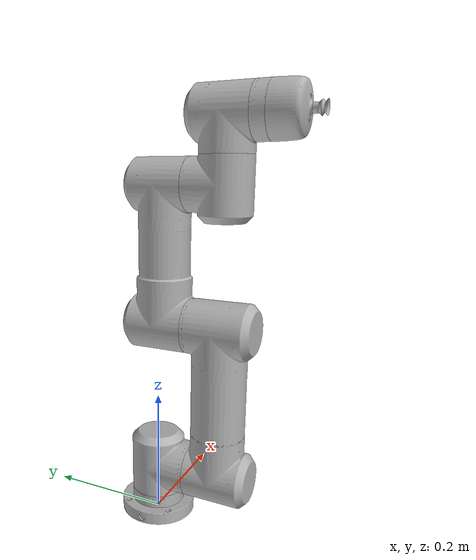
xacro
<?xml version='1.0' encoding='utf-8'?>
<robot xmlns:xacro="http://ros.org/wiki/xacro" name="utra6_550">

  <xacro:arg name="prefix" default=""/>
  <xacro:arg name="ros_namespace" default="utra6_550"/>
  <xacro:arg name="limited" default="false"/>
  <xacro:arg name="effort_control" default="false"/>
  <xacro:arg name="attach_to_world" default="true"/>

    <!-- utra6_550 -->
    <xacro:include filename="$(find arm_description)/urdf/utra6_550.urdf.xacro" />

    <xacro:if value="$(arg attach_to_world)">
      <link name="world" />
    </xacro:if>

    <joint name="$(arg prefix)world_joint" type="fixed">
      <parent link="world" />
      <child link = "$(arg prefix)base_link" />
      <origin xyz="0 0 0" rpy="0 0 0" />
    </joint>

    <xacro:if value="$(arg limited)">
      <xacro:utra6_550_urdf prefix="$(arg prefix)"
        joint1_lower_limit="${-2.0*pi+0.02}" joint1_upper_limit="${2.0*pi-0.02}"
        joint2_lower_limit="${-2.0*pi+0.02}" joint2_upper_limit="${2.0*pi-0.02}"
        joint3_lower_limit="${-2.7299+0.02}" joint3_upper_limit="${2.7299-0.02}"
        joint4_lower_limit="${-2.0*pi+0.02}" joint4_upper_limit="${2.0*pi-0.02}"
        joint5_lower_limit="${-2.0*pi+0.02}" joint5_upper_limit="${2.0*pi-0.02}"
        joint6_lower_limit="${-2.0*pi+0.02}" joint6_upper_limit="${2.0*pi-0.02}"/>
    </xacro:if>
    <xacro:unless value="$(arg limited)">
      <xacro:utra6_550_urdf prefix="$(arg prefix)"/>
    </xacro:unless>

  <xacro:include filename="$(find arm_description)/urdf/transmission.xacro" />

  <xacro:transmission_block joint_name="$(arg prefix)joint1"/>
  <xacro:transmission_block joint_name="$(arg prefix)joint2"/>
  <xacro:transmission_block joint_name="$(arg prefix)joint3"/>
  <xacro:transmission_block joint_name="$(arg prefix)joint4"/>
  <xacro:transmission_block joint_name="$(arg prefix)joint5"/>
  <xacro:transmission_block joint_name="$(arg prefix)joint6"/>

  <xacro:include filename="$(find arm_description)/urdf/utra6_550_common.gazebo.xacro" />

  <xacro:include filename="$(find utra_vacuum_gripper)/urdf/vacuum_gripper.urdf.xacro" />
  <xacro:vacuum_gripper prefix="$(arg prefix)" parent="$(arg prefix)link_6" >
        <origin xyz="0 0 -0.008" rpy="0 0 0"/>
    </xacro:vacuum_gripper>
</robot>

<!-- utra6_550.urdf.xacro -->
<robot xmlns:xacro="http://ros.org/wiki/xacro">

  <xacro:macro name="utra6_550_urdf" params="prefix
    joint1_lower_limit:=${-2.0*pi+0.02} joint1_upper_limit:=${2.0*pi-0.02}
    joint2_lower_limit:=${-2.0*pi+0.02} joint2_upper_limit:=${2.0*pi-0.02}
    joint3_lower_limit:=${-2.7299+0.02} joint3_upper_limit:=${2.7299-0.02}
    joint4_lower_limit:=${-2.0*pi+0.02} joint4_upper_limit:=${2.0*pi-0.02}
    joint5_lower_limit:=${-2.0*pi+0.02} joint5_upper_limit:=${2.0*pi-0.02}
    joint6_lower_limit:=${-2.0*pi+0.02} joint6_upper_limit:=${2.0*pi-0.02}">

    <material name="Black">  <color rgba="0.0 0.0 0.0 1.0"/> </material>
    <material name="Red">    <color rgba="0.8 0.0 0.0 1.0"/> </material>
    <material name="White">  <color rgba="1.0 1.0 1.0 1.0"/> </material>
    <material name="Silver"> <color rgba="0.7 0.7 0.7 1.0"/> </material>

    <xacro:macro name="origin_joint1"> <origin xyz="0 0 0" rpy="0 0 0" /> </xacro:macro>
    <xacro:macro name="origin_joint2"> <origin xyz="0 0 0.0845" rpy="0 0 0" /> </xacro:macro>
    <xacro:macro name="origin_joint3"> <origin xyz="0 0 0.2425" rpy="0 0 0" /> </xacro:macro>
    <xacro:macro name="origin_joint4"> <origin xyz="0 0 0.211" rpy="0 0 0" /> </xacro:macro>
    <xacro:macro name="origin_joint5"> <origin xyz="0 -0.1075 0.0965" rpy="0 0 0" /> </xacro:macro>
    <xacro:macro name="origin_joint6"> <origin xyz="0 -0.0665 0" rpy="${0.5*pi} 0 0" /> </xacro:macro>

    <xacro:macro name="origin_visual_base">   <origin xyz="0 0 0" rpy="0 0 0" /> </xacro:macro>
    <xacro:macro name="origin_visual_link_1"> <origin xyz="0 0 0" rpy="0 0 0" /> </xacro:macro>
    <xacro:macro name="origin_visual_link_2"> <origin xyz="0 0 0" rpy="0 0 0" /> </xacro:macro>
    <xacro:macro name="origin_visual_link_3"> <origin xyz="0 0 0" rpy="0 0 0" /> </xacro:macro>
    <xacro:macro name="origin_visual_link_4"> <origin xyz="0 0 0" rpy="0 0 0" /> </xacro:macro>
    <xacro:macro name="origin_visual_link_5"> <origin xyz="0 0 0" rpy="0 0 0" /> </xacro:macro>
    <xacro:macro name="origin_visual_link_6"> <origin xyz="0 0 0" rpy="0 0 0" /> </xacro:macro>

    <xacro:macro name="origin_inertial_base">   <origin xyz="0 0 0" rpy="0 0 0" /> </xacro:macro>
    <xacro:macro name="origin_inertial_link_1"> <origin xyz="0 0 0" rpy="0 0 0" /> </xacro:macro>
    <xacro:macro name="origin_inertial_link_2"> <origin xyz="0 0 0" rpy="0 0 0" /> </xacro:macro>
    <xacro:macro name="origin_inertial_link_3"> <origin xyz="0 0 0" rpy="0 0 0" /> </xacro:macro>
    <xacro:macro name="origin_inertial_link_4"> <origin xyz="0 0 0" rpy="0 0 0" /> </xacro:macro>
    <xacro:macro name="origin_inertial_link_5"> <origin xyz="0 0 0" rpy="0 0 0" /> </xacro:macro>
    <xacro:macro name="origin_inertial_link_6"> <origin xyz="0 0 0" rpy="0 0 0" /> </xacro:macro>

    <xacro:macro name="inertia_base">   <inertia ixx="0" ixy="0" ixz="0" iyy="0" iyz="0" izz="0" /> </xacro:macro>
    <xacro:macro name="inertia_link_1"> <inertia ixx="0" ixy="0" ixz="0" iyy="0" iyz="0" izz="0" /> </xacro:macro>
    <xacro:macro name="inertia_link_2"> <inertia ixx="0" ixy="0" ixz="0" iyy="0" iyz="0" izz="0" /> </xacro:macro>
    <xacro:macro name="inertia_link_3"> <inertia ixx="0" ixy="0" ixz="0" iyy="0" iyz="0" izz="0" /> </xacro:macro>
    <xacro:macro name="inertia_link_4"> <inertia ixx="0" ixy="0" ixz="0" iyy="0" iyz="0" izz="0" /> </xacro:macro>
    <xacro:macro name="inertia_link_5"> <inertia ixx="0" ixy="0" ixz="0" iyy="0" iyz="0" izz="0" /> </xacro:macro>
    <xacro:macro name="inertia_link_6"> <inertia ixx="0" ixy="0" ixz="0" iyy="0" iyz="0" izz="0" /> </xacro:macro>

    <xacro:property name="mass_base"   value="0.44887004" />
    <xacro:property name="mass_link_1" value="1.59479305" />
    <xacro:property name="mass_link_2" value="3.71296169" />
    <xacro:property name="mass_link_3" value="2.09599149" />
    <xacro:property name="mass_link_4" value="1.15043245" />
    <xacro:property name="mass_link_5" value="1.15043245" />
    <xacro:property name="mass_link_6" value="0.11849134" />

    <xacro:property name="effort_joint1" value="70" />
    <xacro:property name="effort_joint2" value="70" />
    <xacro:property name="effort_joint3" value="70" />
    <xacro:property name="effort_joint4" value="35" />
    <xacro:property name="effort_joint5" value="35" />
    <xacro:property name="effort_joint6" value="35" />

    <xacro:property name="speed_joint1" value="3.0" />
    <xacro:property name="speed_joint2" value="3.0" />
    <xacro:property name="speed_joint3" value="3.0" />
    <xacro:property name="speed_joint4" value="3.5" />
    <xacro:property name="speed_joint5" value="3.5" />
    <xacro:property name="speed_joint6" value="3.5" />

    <xacro:property name="damping_joint1" value="3" />
    <xacro:property name="damping_joint2" value="3" />
    <xacro:property name="damping_joint3" value="3" />
    <xacro:property name="damping_joint4" value="3" />
    <xacro:property name="damping_joint5" value="3" />
    <xacro:property name="damping_joint6" value="3" />

    <xacro:property name="friction_joint1" value="2" />
    <xacro:property name="friction_joint2" value="2" />
    <xacro:property name="friction_joint3" value="2" />
    <xacro:property name="friction_joint4" value="2" />
    <xacro:property name="friction_joint5" value="2" />
    <xacro:property name="friction_joint6" value="2" />

    <link name="${prefix}base_link">
      <inertial>
        <xacro:origin_inertial_base/>
        <mass value="${mass_base}" />
        <xacro:inertia_base/>
      </inertial>
      <visual>
        <xacro:origin_visual_base/>
        <geometry> <mesh filename="package://arm_description/meshes/utra6_550/visual/base.STL" /> </geometry>
        <material name="Silver" />
      </visual>
      <collision>
        <xacro:origin_visual_base/>
        <geometry> <mesh filename="package://arm_description/meshes/utra6_550/visual/base.STL" /> </geometry>
      </collision>
    </link>

    <joint name="${prefix}joint1" type="revolute">
      <xacro:origin_joint1/>
      <parent link="${prefix}base_link" />
      <child link="${prefix}link_1" />
      <axis xyz="0 0 1" />
      <limit lower="${joint1_lower_limit}" upper="${joint1_upper_limit}" effort="${effort_joint1}" velocity="${speed_joint1}" />
      <dynamics damping="${damping_joint1}" friction="${friction_joint1}" />
    </joint>

    <link name="${prefix}link_1">
      <inertial>
        <xacro:origin_inertial_link_1/>
        <mass value="${mass_link_1}" />
        <xacro:inertia_link_1/>
      </inertial>
      <visual>
        <xacro:origin_visual_link_1/>
        <geometry> <mesh filename="package://arm_description/meshes/utra6_550/visual/link1.STL" /> </geometry>
        <material name="Silver" />
      </visual>
      <collision>
        <xacro:origin_visual_link_1/>
        <geometry> <mesh filename="package://arm_description/meshes/utra6_550/visual/link1.STL" /> </geometry>
      </collision>
    </link>

    <joint name="${prefix}joint2" type="revolute">
      <xacro:origin_joint2/>
      <parent link="${prefix}link_1" />
      <child link="${prefix}link_2" />
      <axis xyz="0 -1 0" />
      <limit lower="${joint2_lower_limit}" upper="${joint2_upper_limit}" effort="${effort_joint2}" velocity="${speed_joint2}" />
      <dynamics damping="${damping_joint2}" friction="${friction_joint2}" />
    </joint>

    <link name="${prefix}link_2">
      <inertial>
        <xacro:origin_inertial_link_2/>
        <mass value="${mass_link_2}" />
        <xacro:inertia_link_2/>
      </inertial>
      <visual>
        <xacro:origin_visual_link_2/>
        <geometry> <mesh filename="package://arm_description/meshes/utra6_550/visual/link2.STL" /> </geometry>
        <material name="Silver" />
      </visual>
      <collision>
        <xacro:origin_visual_link_2/>
        <geometry> <mesh filename="package://arm_description/meshes/utra6_550/visual/link2.STL" /> </geometry>
      </collision>
    </link>

    <joint name="${prefix}joint3" type="revolute">
      <xacro:origin_joint3/>
      <parent link="${prefix}link_2" />
      <child link="${prefix}link_3" />
      <axis xyz="0 1 0" />
      <limit lower="${joint3_lower_limit}" upper="${joint3_upper_limit}" effort="${effort_joint3}" velocity="${speed_joint3}" />
      <dynamics damping="${damping_joint3}" friction="${friction_joint3}" />
    </joint>

    <link name="${prefix}link_3">
      <inertial>
        <xacro:origin_inertial_link_3/>
        <mass value="${mass_link_3}" />
        <xacro:inertia_link_3/>
      </inertial>
      <visual>
        <xacro:origin_visual_link_3/>
        <geometry> <mesh filename="package://arm_description/meshes/utra6_550/visual/link3.STL" /> </geometry>
        <material name="Silver" />
      </visual>
      <collision>
        <xacro:origin_visual_link_3/>
        <geometry> <mesh filename="package://arm_description/meshes/utra6_550/visual/link3.STL" /> </geometry>
      </collision>
    </link>

    <joint name="${prefix}joint4" type="revolute">
      <xacro:origin_joint4/>
      <parent link="${prefix}link_3" />
      <child link="${prefix}link_4" />
      <axis xyz="0 -1 0" />
      <limit lower="${joint4_lower_limit}" upper="${joint4_upper_limit}" effort="${effort_joint4}" velocity="${speed_joint4}" />
      <dynamics damping="${damping_joint4}" friction="${friction_joint4}" />
    </joint>

    <link name="${prefix}link_4">
      <inertial>
        <xacro:origin_inertial_link_4/>
        <mass value="${mass_link_4}" />
        <xacro:inertia_link_4/>
      </inertial>
      <visual>
        <xacro:origin_visual_link_4/>
        <geometry> <mesh filename="package://arm_description/meshes/utra6_550/visual/link4.STL" /> </geometry>
        <material name="Silver" />
      </visual>
      <collision>
        <xacro:origin_visual_link_4/>
        <geometry> <mesh filename="package://arm_description/meshes/utra6_550/visual/link4.STL" /> </geometry>
      </collision>
    </link>

    <joint name="${prefix}joint5" type="revolute">
      <xacro:origin_joint5/>
      <parent link="${prefix}link_4" />
      <child link="${prefix}link_5" />
      <axis xyz="0 0 1" />
      <limit lower="${joint5_lower_limit}" upper="${joint5_upper_limit}" effort="${effort_joint5}" velocity="${speed_joint5}" />
      <dynamics damping="${damping_joint5}" friction="${friction_joint5}" />
    </joint>

    <link name="${prefix}link_5">
      <inertial>
        <mass value="${mass_link_5}" />
        <xacro:origin_inertial_link_5/>
        <xacro:inertia_link_5/>
      </inertial>
      <visual>
        <xacro:origin_visual_link_5/>
        <geometry> <mesh filename="package://arm_description/meshes/utra6_550/visual/link5.STL" /> </geometry>
        <material name="Silver" />
      </visual>
      <collision>
        <xacro:origin_visual_link_5/>
        <geometry> <mesh filename="package://arm_description/meshes/utra6_550/visual/link5.STL" /> </geometry>
      </collision>
    </link>

    <joint name="${prefix}joint6" type="revolute">
      <xacro:origin_joint6/>
      <parent link="${prefix}link_5" />
      <child link="${prefix}link_6" />
      <axis xyz="0 0 1" />
      <limit lower="${joint6_lower_limit}" upper="${joint6_upper_limit}" effort="${effort_joint6}" velocity="${speed_joint6}" />
      <dynamics damping="${damping_joint6}" friction="${friction_joint6}" />
    </joint>

    <link name="${prefix}link_6">
      <inertial>
        <mass value="${mass_link_6}" />
        <xacro:origin_inertial_link_6/>
        <xacro:inertia_link_6/>
      </inertial>
      <visual>
        <xacro:origin_visual_link_6/>
        <geometry> <mesh filename="package://arm_description/meshes/utra6_550/visual/link6.STL" /> </geometry>
        <material name="Silver" />
      </visual>
      <collision>
        <xacro:origin_visual_link_6/>
        <geometry> <mesh filename="package://arm_description/meshes/utra6_550/visual/link6.STL" /> </geometry>
      </collision>
    </link>

  </xacro:macro>
</robot>

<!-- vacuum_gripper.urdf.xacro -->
<robot xmlns:xacro="http://ros.org/wiki/xacro">
    <xacro:macro name="vacuum_gripper" params="prefix parent *origin">
        <link name="${prefix}vauum_gripper_base">
            <inertial>
            <mass value="0.00001" />
            <origin xyz="0 0 0" rpy="0 0 0" />
            <inertia ixx="0" ixy="0" ixz="0" iyy="0" iyz="0" izz="0" />
            </inertial>
            <visual>
            <origin xyz="0 0 0" rpy="0 0 0" />
            <geometry> <mesh filename="package://utra_vacuum_gripper/meshes/vacuum_base.STL" /> </geometry>
            <material name="Silver" />
            </visual>
            <collision>
            <origin xyz="0 0 0" rpy="0 0 0" />
            <geometry> <mesh filename="package://utra_vacuum_gripper/meshes/vacuum_base.STL" /> </geometry>
            </collision>
        </link>
        <joint name="$(arg prefix)vacuum_gripper_fix" type="fixed">
            <parent link="${parent}"/>
            <child link="$(arg prefix)vauum_gripper_base"/>
            <xacro:insert_block name="origin"/>
        </joint>
        <link name="${prefix}vauum_gripper">
            <inertial>
            <mass value="0.00001" />
            <origin xyz="0 0 0" rpy="0 0 0" />
            <inertia ixx="0" ixy="0" ixz="0" iyy="0" iyz="0" izz="0" />
            </inertial>
            <visual>
            <origin xyz="0 0 0" rpy="0 0 0" />
            <geometry> <mesh filename="package://utra_vacuum_gripper/meshes/vacuum.STL" /> </geometry>
            <material name="Silver" />
            </visual>
            <collision>
            <origin xyz="0 0 0" rpy="0 0 0" />
            <geometry> <mesh filename="package://utra_vacuum_gripper/meshes/vacuum.STL" /> </geometry>
            </collision>
        </link>
        <joint name="${prefix}vacuum_gripper_joint" type="revolute">
            <axis xyz="1 0 0" />
            <parent link="${prefix}vauum_gripper_base" />
            <child link="${prefix}vauum_gripper" />
            <origin xyz="0 0 0" rpy="0 0 0" />
            <limit effort="50" velocity="50" lower="0" upper="0" />
            <dynamics damping="0.0" friction="10"/>
        </joint>

        <gazebo>
            <plugin name="gazebo_ros_vacuum_gripper" filename="libgazebo_ros_vacuum_gripper.so">
                <robotNamespace>/utra/vacuum_gripper</robotNamespace>
                <bodyName>${prefix}vauum_gripper</bodyName>
                <topicName>grasping</topicName>
                <maxForce>50</maxForce>
                <maxDistance>0.05</maxDistance>
                <minDistance>0.01</minDistance>
            </plugin>
        </gazebo>
        <gazebo reference="${prefix}vauum_gripper">
                <mu1>50</mu1>
                <mu2>50</mu2>
    　　　　　 <minDepth>0.003</minDepth>
                <maxVel>0</maxVel>
                <kp>1000000.0</kp>
                <kd>1.0</kd>
                <material>Gazebo/Grey</material>
        </gazebo>

    </xacro:macro>
</robot>
